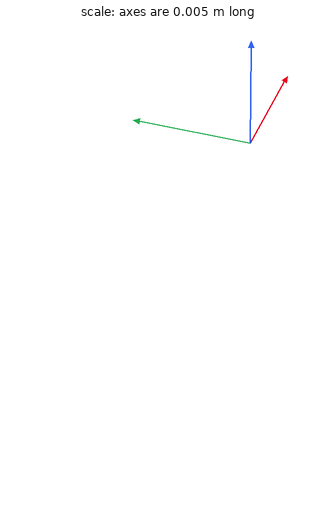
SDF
<?xml version="1.0" ?>
<sdf version="1.5">
  <model name="Stop Sign">
    <static>true</static>
    <link name="link">
      <collision name="collision">
        <geometry>
          <mesh>
            <uri>model://straightandleft/meshes/stop_sign.dae</uri>
          </mesh>
        </geometry>
      </collision>
      <visual name="visual">
        <geometry>
          <mesh>
            <uri>model://straightandleft/meshes/stop_sign.dae</uri>
          </mesh>
        </geometry>
        <material>
          <script>
            <uri>model://straightandleft/materials/scripts</uri>
            <uri>model://straightandleft/materials/textures</uri>
            <name>StraightandLeft/Diffuse</name>
          </script>
        </material>
      </visual>
    </link>
  </model>
</sdf>
